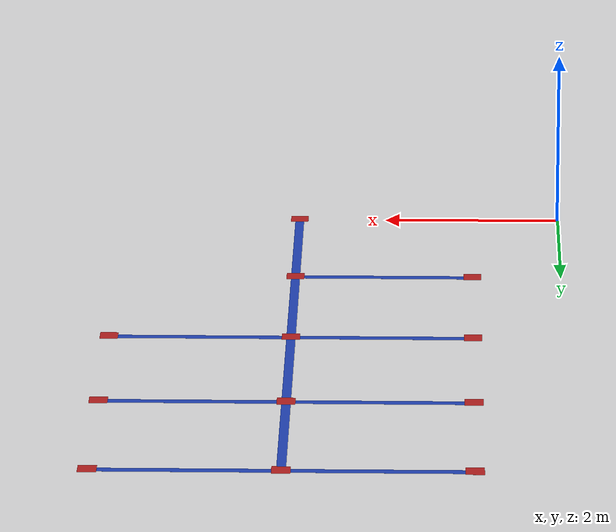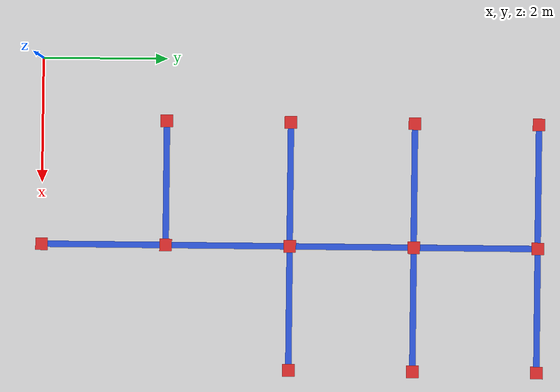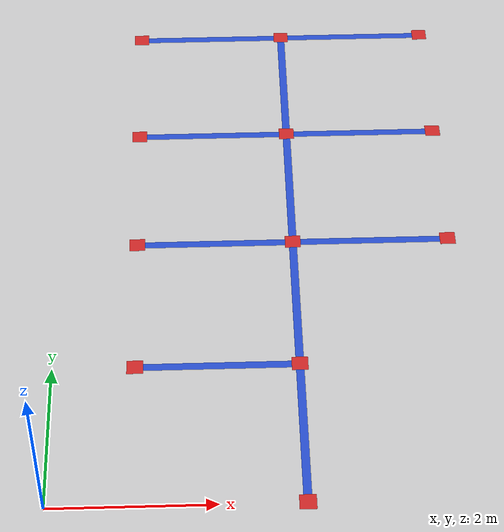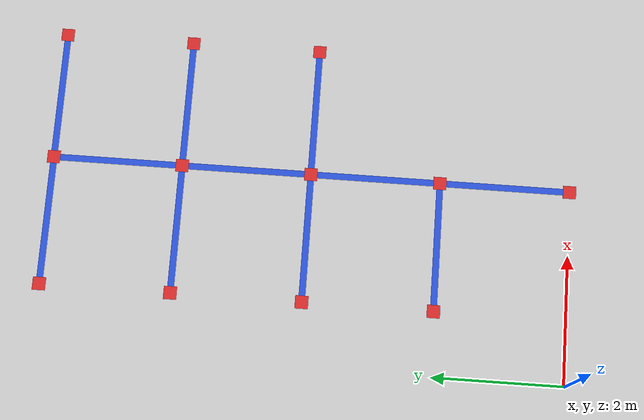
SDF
<sdf version="1.6">
 <world name="default">
  <light name="sun" type="directional">
   <pose>0 0 10 0 -0 0</pose>
   <diffuse>0.8 0.8 0.8 1</diffuse>
   <specular>0.1 0.1 0.1 1</specular>
   <attenuation>
    <range>1000</range>
    <constant>0.9</constant>
    <linear>0.01</linear>
    <quadratic>0.001</quadratic>
   </attenuation>
   <direction>-0.5 0.5 -1</direction>
  </light>
  <gravity>0 0 -9.8</gravity>
  <magnetic_field>6e-06 2.3e-05 -4.2e-05</magnetic_field>
  <atmosphere type="adiabatic"/>
  <physics name="default_physics" default="0" type="ode">
   <max_step_size>0.001</max_step_size>
   <real_time_factor>1</real_time_factor>
   <real_time_update_rate>1000</real_time_update_rate>
  </physics>
  <scene><ambient>0.4 0.4 0.4 1</ambient><background>0.1 0.5 0.3 1</background><shadows>1</shadows></scene>
  <spherical_coordinates>
   <surface_model>EARTH_WGS84</surface_model>
   <latitude_deg>0</latitude_deg>
   <longitude_deg>0</longitude_deg>
   <elevation>0</elevation>
   <heading_deg>0</heading_deg>
  </spherical_coordinates>
  <model name="yellow line_0">
   <static>1</static>
   <link name="link_ground">
    <collision name="collision">
     <geometry><plane><normal>0 0 1</normal><size>0.1 2</size></plane></geometry>
     <surface><friction><ode><mu>100</mu><mu2>50</mu2></ode></friction></surface>
    </collision>
    <visual name="visual_ground">
     <cast_shadows>0</cast_shadows>
     <geometry><plane><normal>0 0 1</normal><size>0.1 2</size></plane></geometry>
     <material>
      <script><uri>file://media/materials/scripts/gazebo.material</uri><name>Gazebo/Blue</name></script>
     </material>
    </visual>
   </link>
   <pose>2 2 0 0 -0 1.57</pose>
  </model>
  <model name="yellow line_1">
   <static>1</static>
   <link name="link_ground">
    <collision name="collision">
     <geometry><plane><normal>0 0 1</normal><size>0.1 2</size></plane></geometry>
     <surface><friction><ode><mu>100</mu><mu2>50</mu2></ode></friction></surface>
    </collision>
    <visual name="visual_ground">
     <cast_shadows>0</cast_shadows>
     <geometry><plane><normal>0 0 1</normal><size>0.1 2</size></plane></geometry>
     <material>
      <script><uri>file://media/materials/scripts/gazebo.material</uri><name>Gazebo/Blue</name></script>
     </material>
    </visual>
   </link>
   <pose>3 1 0 0 0 0</pose>
  </model>
  <model name="yellow line_2">
   <static>1</static>
   <link name="link_ground">
    <collision name="collision">
     <geometry><plane><normal>0 0 1</normal><size>0.1 2</size></plane></geometry>
     <surface><friction><ode><mu>100</mu><mu2>50</mu2></ode></friction></surface>
    </collision>
    <visual name="visual_ground">
     <cast_shadows>0</cast_shadows>
     <geometry><plane><normal>0 0 1</normal><size>0.1 2</size></plane></geometry>
     <material>
      <script><uri>file://media/materials/scripts/gazebo.material</uri><name>Gazebo/Blue</name></script>
     </material>
    </visual>
   </link>
   <pose>3 3 0 0 -0 0</pose>
  </model>
  <model name="yellow line_3">
   <static>1</static>
   <link name="link_ground">
    <collision name="collision">
     <geometry><plane><normal>0 0 1</normal><size>0.1 2</size></plane></geometry>
     <surface><friction><ode><mu>100</mu><mu2>50</mu2></ode></friction></surface>
    </collision>
    <visual name="visual_ground">
     <cast_shadows>0</cast_shadows>
     <geometry><plane><normal>0 0 1</normal><size>0.1 2</size></plane></geometry>
     <material>
      <script><uri>file://media/materials/scripts/gazebo.material</uri><name>Gazebo/Blue</name></script>
     </material>
    </visual>
   </link>
   <pose>2 4 0 0 -0 1.57</pose>
  </model>
  <model name="yellow line_4">
   <static>1</static>
   <link name="link_ground">
    <collision name="collision">
     <geometry><plane><normal>0 0 1</normal><size>0.1 2</size></plane></geometry>
     <surface><friction><ode><mu>100</mu><mu2>50</mu2></ode></friction></surface>
    </collision>
    <visual name="visual_ground">
     <cast_shadows>0</cast_shadows>
     <geometry><plane><normal>0 0 1</normal><size>0.1 2</size></plane></geometry>
     <material>
      <script><uri>file://media/materials/scripts/gazebo.material</uri><name>Gazebo/Blue</name></script>
     </material>
    </visual>
   </link>
   <pose>4 4 0 0 -0 1.57</pose>
  </model>
  <model name="yellow line_5">
   <static>1</static>
   <link name="link_ground">
    <collision name="collision">
     <geometry><plane><normal>0 0 1</normal><size>0.1 2</size></plane></geometry>
     <surface><friction><ode><mu>100</mu><mu2>50</mu2></ode></friction></surface>
    </collision>
    <visual name="visual_ground">
     <cast_shadows>0</cast_shadows>
     <geometry><plane><normal>0 0 1</normal><size>0.1 2</size></plane></geometry>
     <material>
      <script><uri>file://media/materials/scripts/gazebo.material</uri><name>Gazebo/Blue</name></script>
     </material>
    </visual>
   </link>
   <pose>3 5 0 0 0 0</pose>
  </model>
  <model name="yellow line_6">
   <static>1</static>
   <link name="link_ground">
    <collision name="collision">
     <geometry><plane><normal>0 0 1</normal><size>0.1 2</size></plane></geometry>
     <surface><friction><ode><mu>100</mu><mu2>50</mu2></ode></friction></surface>
    </collision>
    <visual name="visual_ground">
     <cast_shadows>0</cast_shadows>
     <geometry><plane><normal>0 0 1</normal><size>0.1 2</size></plane></geometry>
     <material>
      <script><uri>file://media/materials/scripts/gazebo.material</uri><name>Gazebo/Blue</name></script>
     </material>
    </visual>
   </link>
   <pose>3 7 0 0 -0 0</pose>
  </model>
  <model name="yellow line_7">
   <static>1</static>
   <link name="link_ground">
    <collision name="collision">
     <geometry><plane><normal>0 0 1</normal><size>0.1 2</size></plane></geometry>
     <surface><friction><ode><mu>100</mu><mu2>50</mu2></ode></friction></surface>
    </collision>
    <visual name="visual_ground">
     <cast_shadows>0</cast_shadows>
     <geometry><plane><normal>0 0 1</normal><size>0.1 2</size></plane></geometry>
     <material>
      <script><uri>file://media/materials/scripts/gazebo.material</uri><name>Gazebo/Blue</name></script>
     </material>
    </visual>
   </link>
   <pose>2 6 0 0 -0 1.57</pose>
  </model>
  <model name="yellow line_8">
   <static>1</static>
   <link name="link_ground">
    <collision name="collision">
     <geometry><plane><normal>0 0 1</normal><size>0.1 2</size></plane></geometry>
     <surface><friction><ode><mu>100</mu><mu2>50</mu2></ode></friction></surface>
    </collision>
    <visual name="visual_ground">
     <cast_shadows>0</cast_shadows>
     <geometry><plane><normal>0 0 1</normal><size>0.1 2</size></plane></geometry>
     <material>
      <script><uri>file://media/materials/scripts/gazebo.material</uri><name>Gazebo/Blue</name></script>
     </material>
    </visual>
   </link>
   <pose>4 6 0 0 0 1.57</pose>
  </model>
  <model name="yellow line_9">
   <static>1</static>
   <link name="link_ground">
    <collision name="collision">
     <geometry><plane><normal>0 0 1</normal><size>0.1 2</size></plane></geometry>
     <surface><friction><ode><mu>100</mu><mu2>50</mu2></ode></friction></surface>
    </collision>
    <visual name="visual_ground">
     <cast_shadows>0</cast_shadows>
     <geometry><plane><normal>0 0 1</normal><size>0.1 2</size></plane></geometry>
     <material>
      <script><uri>file://media/materials/scripts/gazebo.material</uri><name>Gazebo/Blue</name></script>
     </material>
    </visual>
   </link>
   <pose>2 8 0 0 0 1.57</pose>
  </model>
  <model name="yellow line_10">
   <static>1</static>
   <link name="link_ground">
    <collision name="collision">
     <geometry><plane><normal>0 0 1</normal><size>0.1 2</size></plane></geometry>
     <surface><friction><ode><mu>100</mu><mu2>50</mu2></ode></friction></surface>
    </collision>
    <visual name="visual_ground">
     <cast_shadows>0</cast_shadows>
     <geometry><plane><normal>0 0 1</normal><size>0.1 2</size></plane></geometry>
     <material>
      <script><uri>file://media/materials/scripts/gazebo.material</uri><name>Gazebo/Blue</name></script>
     </material>
    </visual>
   </link>
   <pose>4 8 0 0 0 1.57</pose>
  </model>
  <model name="intersection_1">
   <static>1</static>
   <link name="link_ground">
    <collision name="collision">
     <geometry><plane><normal>0 0 1</normal><size>0.2 0.2</size></plane></geometry>
     <surface><friction><ode><mu>100</mu><mu2>50</mu2></ode></friction></surface>
    </collision>
    <visual name="visual_ground">
     <cast_shadows>0</cast_shadows>
     <geometry><plane><normal>0 0 1</normal><size>0.2 0.2</size></plane></geometry>
     <material>
      <script><uri>file://media/materials/scripts/gazebo.material</uri><name>Gazebo/Red</name></script>
     </material>
    </visual>
   </link>
   <pose>3 4 0.01 0 -0 0.0</pose>
  </model>
  <model name="intersection_2">
   <static>1</static>
   <link name="link_ground">
    <collision name="collision">
     <geometry><plane><normal>0 0 1</normal><size>0.2 0.2</size></plane></geometry>
     <surface><friction><ode><mu>100</mu><mu2>50</mu2></ode></friction></surface>
    </collision>
    <visual name="visual_ground">
     <cast_shadows>0</cast_shadows>
     <geometry><plane><normal>0 0 1</normal><size>0.2 0.2</size></plane></geometry>
     <material>
      <script><uri>file://media/materials/scripts/gazebo.material</uri><name>Gazebo/Red</name></script>
     </material>
    </visual>
   </link>
   <pose>3 6 0.01 0 -0 0.0</pose>
  </model>
  <model name="intersection_3">
   <static>1</static>
   <link name="link_ground">
    <collision name="collision">
     <geometry><plane><normal>0 0 1</normal><size>0.2 0.2</size></plane></geometry>
     <surface><friction><ode><mu>100</mu><mu2>50</mu2></ode></friction></surface>
    </collision>
    <visual name="visual_ground">
     <cast_shadows>0</cast_shadows>
     <geometry><plane><normal>0 0 1</normal><size>0.2 0.2</size></plane></geometry>
     <material>
      <script><uri>file://media/materials/scripts/gazebo.material</uri><name>Gazebo/Red</name></script>
     </material>
    </visual>
   </link>
   <pose>3 0 0.01 0 -0 0.0</pose>
  </model>
  <model name="intersection_4">
   <static>1</static>
   <link name="link_ground">
    <collision name="collision">
     <geometry><plane><normal>0 0 1</normal><size>0.2 0.2</size></plane></geometry>
     <surface><friction><ode><mu>100</mu><mu2>50</mu2></ode></friction></surface>
    </collision>
    <visual name="visual_ground">
     <cast_shadows>0</cast_shadows>
     <geometry><plane><normal>0 0 1</normal><size>0.2 0.2</size></plane></geometry>
     <material>
      <script><uri>file://media/materials/scripts/gazebo.material</uri><name>Gazebo/Red</name></script>
     </material>
    </visual>
   </link>
   <pose>3 2 0.01 0 -0 0.0</pose>
  </model>
  <model name="intersection_5">
   <static>1</static>
   <link name="link_ground">
    <collision name="collision">
     <geometry><plane><normal>0 0 1</normal><size>0.2 0.2</size></plane></geometry>
     <surface><friction><ode><mu>100</mu><mu2>50</mu2></ode></friction></surface>
    </collision>
    <visual name="visual_ground">
     <cast_shadows>0</cast_shadows>
     <geometry><plane><normal>0 0 1</normal><size>0.2 0.2</size></plane></geometry>
     <material>
      <script><uri>file://media/materials/scripts/gazebo.material</uri><name>Gazebo/Red</name></script>
     </material>
    </visual>
   </link>
   <pose>1 2 0.01 0 -0 0.0</pose>
  </model>
  <model name="intersection_6">
   <static>1</static>
   <link name="link_ground">
    <collision name="collision">
     <geometry><plane><normal>0 0 1</normal><size>0.2 0.2</size></plane></geometry>
     <surface><friction><ode><mu>100</mu><mu2>50</mu2></ode></friction></surface>
    </collision>
    <visual name="visual_ground">
     <cast_shadows>0</cast_shadows>
     <geometry><plane><normal>0 0 1</normal><size>0.2 0.2</size></plane></geometry>
     <material>
      <script><uri>file://media/materials/scripts/gazebo.material</uri><name>Gazebo/Red</name></script>
     </material>
    </visual>
   </link>
   <pose>1 4 0.01 0 -0 0.0</pose>
  </model>
  <model name="intersection_7">
   <static>1</static>
   <link name="link_ground">
    <collision name="collision">
     <geometry><plane><normal>0 0 1</normal><size>0.2 0.2</size></plane></geometry>
     <surface><friction><ode><mu>100</mu><mu2>50</mu2></ode></friction></surface>
    </collision>
    <visual name="visual_ground">
     <cast_shadows>0</cast_shadows>
     <geometry><plane><normal>0 0 1</normal><size>0.2 0.2</size></plane></geometry>
     <material>
      <script><uri>file://media/materials/scripts/gazebo.material</uri><name>Gazebo/Red</name></script>
     </material>
    </visual>
   </link>
   <pose>5 4 0.01 0 -0 0.0</pose>
  </model>
  <model name="intersection_8">
   <static>1</static>
   <link name="link_ground">
    <collision name="collision">
     <geometry><plane><normal>0 0 1</normal><size>0.2 0.2</size></plane></geometry>
     <surface><friction><ode><mu>100</mu><mu2>50</mu2></ode></friction></surface>
    </collision>
    <visual name="visual_ground">
     <cast_shadows>0</cast_shadows>
     <geometry><plane><normal>0 0 1</normal><size>0.2 0.2</size></plane></geometry>
     <material>
      <script><uri>file://media/materials/scripts/gazebo.material</uri><name>Gazebo/Red</name></script>
     </material>
    </visual>
   </link>
   <pose>5 6 0.01 0 -0 0.0</pose>
  </model>
  <model name="intersection_9">
   <static>1</static>
   <link name="link_ground">
    <collision name="collision">
     <geometry><plane><normal>0 0 1</normal><size>0.2 0.2</size></plane></geometry>
     <surface><friction><ode><mu>100</mu><mu2>50</mu2></ode></friction></surface>
    </collision>
    <visual name="visual_ground">
     <cast_shadows>0</cast_shadows>
     <geometry><plane><normal>0 0 1</normal><size>0.2 0.2</size></plane></geometry>
     <material>
      <script><uri>file://media/materials/scripts/gazebo.material</uri><name>Gazebo/Red</name></script>
     </material>
    </visual>
   </link>
   <pose>1 6 0.01 0 -0 0.0</pose>
  </model>
  <model name="intersection_10">
   <static>1</static>
   <link name="link_ground">
    <collision name="collision">
     <geometry><plane><normal>0 0 1</normal><size>0.2 0.2</size></plane></geometry>
     <surface><friction><ode><mu>100</mu><mu2>50</mu2></ode></friction></surface>
    </collision>
    <visual name="visual_ground">
     <cast_shadows>0</cast_shadows>
     <geometry><plane><normal>0 0 1</normal><size>0.2 0.2</size></plane></geometry>
     <material>
      <script><uri>file://media/materials/scripts/gazebo.material</uri><name>Gazebo/Red</name></script>
     </material>
    </visual>
   </link>
   <pose>1 8 0.01 0 -0 0.0</pose>
  </model>
  <model name="intersection_11">
   <static>1</static>
   <link name="link_ground">
    <collision name="collision">
     <geometry><plane><normal>0 0 1</normal><size>0.2 0.2</size></plane></geometry>
     <surface><friction><ode><mu>100</mu><mu2>50</mu2></ode></friction></surface>
    </collision>
    <visual name="visual_ground">
     <cast_shadows>0</cast_shadows>
     <geometry><plane><normal>0 0 1</normal><size>0.2 0.2</size></plane></geometry>
     <material>
      <script><uri>file://media/materials/scripts/gazebo.material</uri><name>Gazebo/Red</name></script>
     </material>
    </visual>
   </link>
   <pose>3 8 0.01 0 -0 0.0</pose>
  </model>
  <model name="intersection_12">
   <static>1</static>
   <link name="link_ground">
    <collision name="collision">
     <geometry><plane><normal>0 0 1</normal><size>0.2 0.2</size></plane></geometry>
     <surface><friction><ode><mu>100</mu><mu2>50</mu2></ode></friction></surface>
    </collision>
    <visual name="visual_ground">
     <cast_shadows>0</cast_shadows>
     <geometry><plane><normal>0 0 1</normal><size>0.2 0.2</size></plane></geometry>
     <material>
      <script><uri>file://media/materials/scripts/gazebo.material</uri><name>Gazebo/Red</name></script>
     </material>
    </visual>
   </link>
   <pose>5 8 0.01 0 -0 0.0</pose>
  </model>
 </world>
</sdf>
